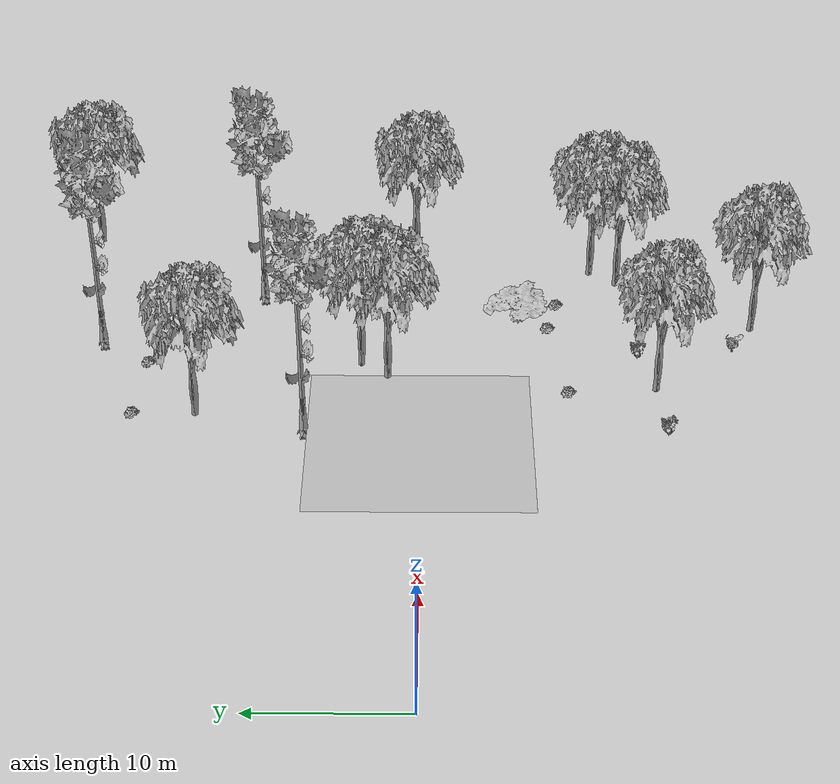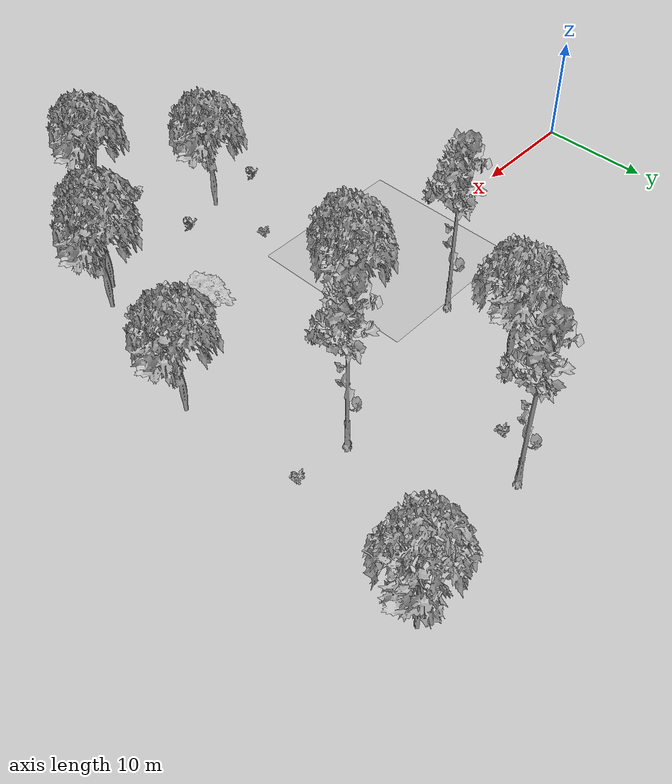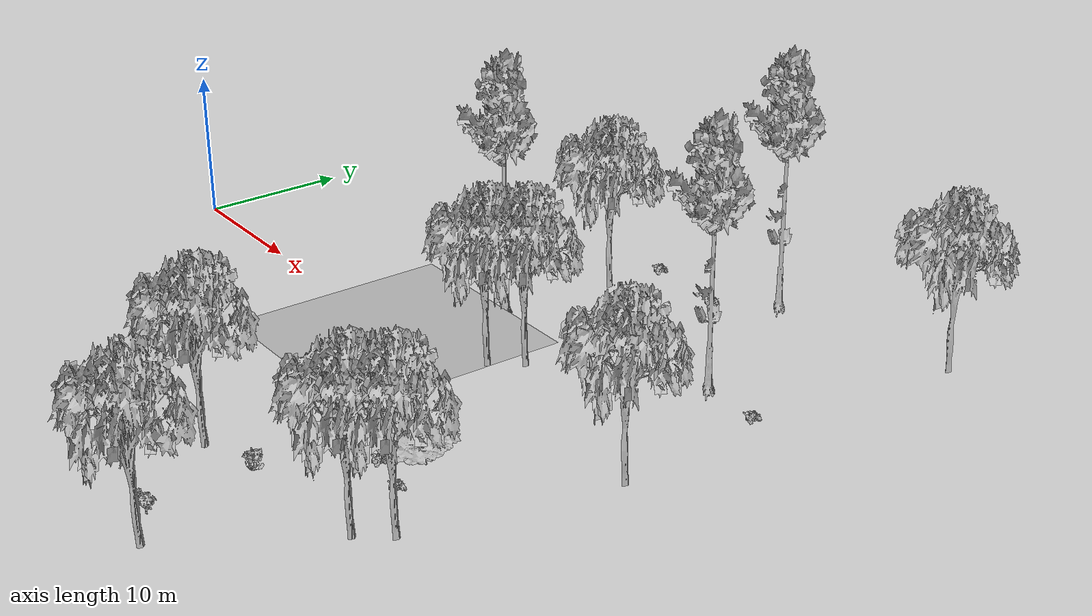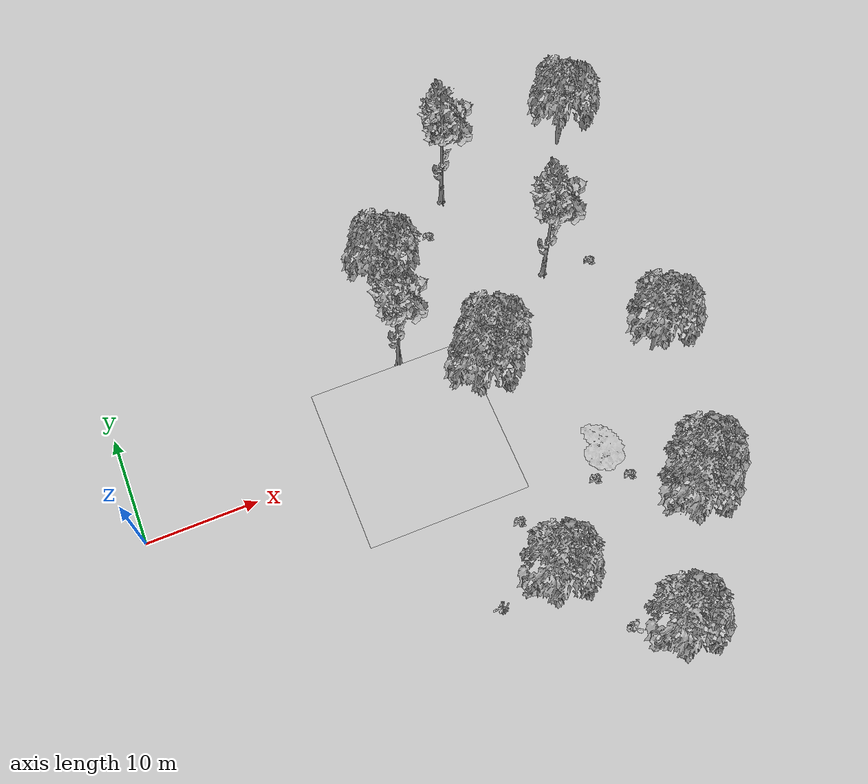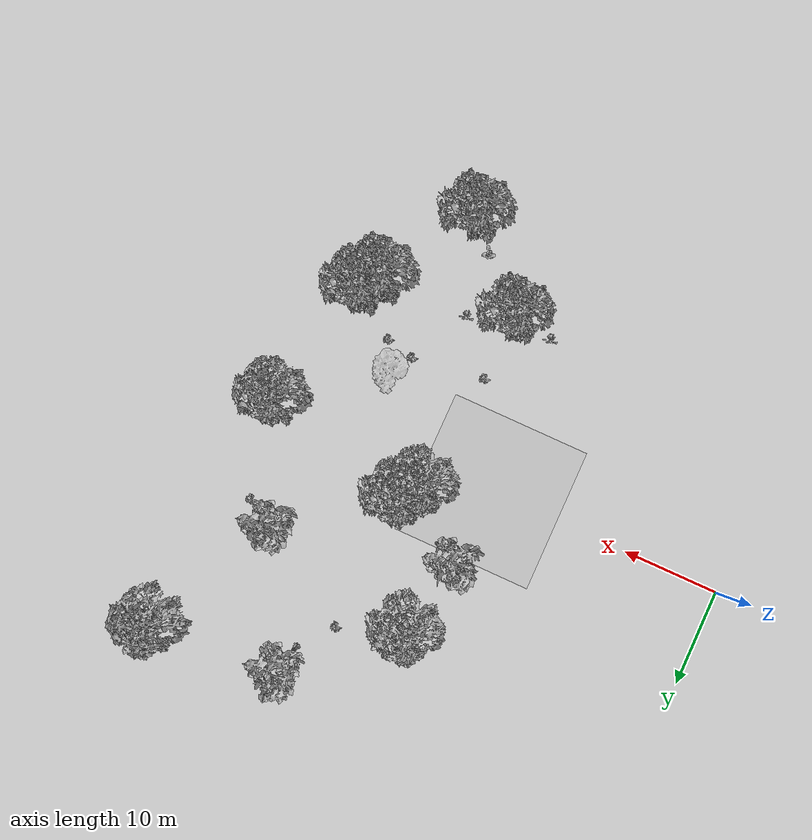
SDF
<sdf version="1.7">
 <world name="default">
  <model name="ground_plane">
   <static>1</static>
   <link name="link">
    <collision name="collision">
     <pose>25.0 0 0 0 -0 0</pose>
     <geometry><plane><normal>0 0 1</normal><size>50 50</size></plane></geometry>
     <surface><contact><ode><min_depth>0.01</min_depth><max_vel>0</max_vel></ode></contact></surface>
    </collision>
    <visual name="grass">
     <pose>25.0 0 0 0 -0 0</pose>
     <cast_shadows>0</cast_shadows>
     <geometry>
      <mesh>
       <scale>0.2731578947368421 0.2802702702702703 0.1</scale>
       <uri>file://grass_plane/meshes/grass_plane.dae</uri>
      </mesh>
     </geometry>
    </visual>
   </link>
  </model>
  <model name="Tree 1">
   <static>1</static>
   <pose>36.51618923853984 22.60068479904337 0 1.57079 -0 0</pose>
   <link name="link">
    <collision name="collision">
     <geometry><mesh><scale>3.5 5 3.5</scale><uri>model://tree_9/meshes/tree_9.obj</uri></mesh></geometry>
    </collision>
    <visual name="visual">
     <geometry><mesh><scale>3.5 5 3.5</scale><uri>model://tree_9/meshes/tree_9.obj</uri></mesh></geometry>
    </visual>
   </link>
  </model>
  <model name="Tree 3">
   <static>1</static>
   <pose>48.26618923853984 0.37846257682116047 0 1.57079 -0 0</pose>
   <link name="link">
    <collision name="collision">
     <geometry><mesh><scale>3.5 5 3.5</scale><uri>model://tree_2/meshes/tree_2.obj</uri></mesh></geometry>
    </collision>
    <visual name="visual">
     <geometry><mesh><scale>3.5 5 3.5</scale><uri>model://tree_2/meshes/tree_2.obj</uri></mesh></geometry>
    </visual>
   </link>
  </model>
  <model name="Tree 5">
   <static>1</static>
   <pose>30.641189238539837 -16.288204089845504 0 1.57079 -0 0</pose>
   <link name="link">
    <collision name="collision">
     <geometry><mesh><scale>3.5 5 3.5</scale><uri>model://tree_2/meshes/tree_2.obj</uri></mesh></geometry>
    </collision>
    <visual name="visual">
     <geometry><mesh><scale>3.5 5 3.5</scale><uri>model://tree_2/meshes/tree_2.obj</uri></mesh></geometry>
    </visual>
   </link>
  </model>
  <model name="Tree 7">
   <static>1</static>
   <pose>42.39118923853984 11.489573687932271 0 1.57079 -0 0</pose>
   <link name="link">
    <collision name="collision">
     <geometry><mesh><scale>3.5 5 3.5</scale><uri>model://tree_9/meshes/tree_9.obj</uri></mesh></geometry>
    </collision>
    <visual name="visual">
     <geometry><mesh><scale>3.5 5 3.5</scale><uri>model://tree_9/meshes/tree_9.obj</uri></mesh></geometry>
    </visual>
   </link>
  </model>
  <model name="Tree 9">
   <static>1</static>
   <pose>33.57868923853984 4.082166280524863 0 1.57079 -0 0</pose>
   <link name="link">
    <collision name="collision">
     <geometry><mesh><scale>3.5 5 3.5</scale><uri>model://tree_2/meshes/tree_2.obj</uri></mesh></geometry>
    </collision>
    <visual name="visual">
     <geometry><mesh><scale>3.5 5 3.5</scale><uri>model://tree_2/meshes/tree_2.obj</uri></mesh></geometry>
    </visual>
   </link>
  </model>
  <model name="Tree 11">
   <static>1</static>
   <pose>45.32868923853984 -12.5845003861418 0 1.57079 -0 0</pose>
   <link name="link">
    <collision name="collision">
     <geometry><mesh><scale>3.5 5 3.5</scale><uri>model://tree_2/meshes/tree_2.obj</uri></mesh></geometry>
    </collision>
    <visual name="visual">
     <geometry><mesh><scale>3.5 5 3.5</scale><uri>model://tree_2/meshes/tree_2.obj</uri></mesh></geometry>
    </visual>
   </link>
  </model>
  <model name="Tree 13">
   <static>1</static>
   <pose>27.703689238539837 15.193277391635966 0 1.57079 -0 0</pose>
   <link name="link">
    <collision name="collision">
     <geometry><mesh><scale>3.5 5 3.5</scale><uri>model://tree_2/meshes/tree_2.obj</uri></mesh></geometry>
    </collision>
    <visual name="visual">
     <geometry><mesh><scale>3.5 5 3.5</scale><uri>model://tree_2/meshes/tree_2.obj</uri></mesh></geometry>
    </visual>
   </link>
  </model>
  <model name="Tree 15">
   <static>1</static>
   <pose>39.45368923853984 -7.028944830586244 0 1.57079 -0 0</pose>
   <link name="link">
    <collision name="collision">
     <geometry><mesh><scale>4 2.5 4</scale><uri>model://tree_1/meshes/tree_1.obj</uri></mesh></geometry>
    </collision>
    <visual name="visual">
     <geometry><mesh><scale>4 2.5 4</scale><uri>model://tree_1/meshes/tree_1.obj</uri></mesh></geometry>
    </visual>
   </link>
  </model>
  <model name="Tree 17">
   <static>1</static>
   <pose>37.98493923853984 -23.69561149725291 0 1.57079 -0 0</pose>
   <link name="link">
    <collision name="collision">
     <geometry><mesh><scale>3.5 5 3.5</scale><uri>model://tree_2/meshes/tree_2.obj</uri></mesh></geometry>
    </collision>
    <visual name="visual">
     <geometry><mesh><scale>3.5 5 3.5</scale><uri>model://tree_2/meshes/tree_2.obj</uri></mesh></geometry>
    </visual>
   </link>
  </model>
  <model name="Tree 18">
   <static>1</static>
   <pose>26.234939238539837 7.785869984228569 0 1.57079 -0 0</pose>
   <link name="link">
    <collision name="collision">
     <geometry><mesh><scale>3.5 5 3.5</scale><uri>model://tree_9/meshes/tree_9.obj</uri></mesh></geometry>
    </collision>
    <visual name="visual">
     <geometry><mesh><scale>3.5 5 3.5</scale><uri>model://tree_9/meshes/tree_9.obj</uri></mesh></geometry>
    </visual>
   </link>
  </model>
  <model name="Tree 19">
   <static>1</static>
   <pose>49.73493923853984 24.452536650895226 0 1.57079 -0 0</pose>
   <link name="link">
    <collision name="collision">
     <geometry><mesh><scale>3.5 5 3.5</scale><uri>model://tree_2/meshes/tree_2.obj</uri></mesh></geometry>
    </collision>
    <visual name="visual">
     <geometry><mesh><scale>3.5 5 3.5</scale><uri>model://tree_2/meshes/tree_2.obj</uri></mesh></geometry>
    </visual>
   </link>
  </model>
  <model name="Tree 21">
   <static>1</static>
   <pose>32.10993923853984 2.230314428673008 0 1.57079 -0 0</pose>
   <link name="link">
    <collision name="collision">
     <geometry><mesh><scale>3.5 5 3.5</scale><uri>model://tree_2/meshes/tree_2.obj</uri></mesh></geometry>
    </collision>
    <visual name="visual">
     <geometry><mesh><scale>3.5 5 3.5</scale><uri>model://tree_2/meshes/tree_2.obj</uri></mesh></geometry>
    </visual>
   </link>
  </model>
  <model name="Tree 23">
   <static>1</static>
   <pose>43.85993923853984 -14.436352237993653 0 1.57079 -0 0</pose>
   <link name="link">
    <collision name="collision">
     <geometry><mesh><scale>3.5 5 3.5</scale><uri>model://tree_2/meshes/tree_2.obj</uri></mesh></geometry>
    </collision>
    <visual name="visual">
     <geometry><mesh><scale>3.5 5 3.5</scale><uri>model://tree_2/meshes/tree_2.obj</uri></mesh></geometry>
    </visual>
   </link>
  </model>
  <model name="Bush 0">
   <static>1</static>
   <pose>35.39076037320754 -22.039251478103992 0 1.57079 -0 0</pose>
   <link name="link">
    <collision name="collision">
     <geometry><mesh><scale>2 2 2</scale><uri>model://bush_0/meshes/bush_0.obj</uri></mesh></geometry>
     <surface><contact><collide_without_contact>false</collide_without_contact></contact></surface>
    </collision>
    <visual name="visual">
     <geometry><mesh><scale>2 2 2</scale><uri>model://bush_0/meshes/bush_0.obj</uri></mesh></geometry>
    </visual>
   </link>
  </model>
  <model name="Bush 1">
   <static>1</static>
   <pose>33.699853140486184 19.08185109374979 0 1.57079 -0 0</pose>
   <link name="link">
    <collision name="collision">
     <geometry><mesh><scale>2 2 2</scale><uri>model://bush_2/meshes/bush_2.obj</uri></mesh></geometry>
     <surface><contact><collide_without_contact>false</collide_without_contact></contact></surface>
    </collision>
    <visual name="visual">
     <geometry><mesh><scale>2 2 2</scale><uri>model://bush_2/meshes/bush_2.obj</uri></mesh></geometry>
    </visual>
   </link>
  </model>
  <model name="Bush 3">
   <static>1</static>
   <pose>38.055420558453704 -9.136974654698749 0 1.57079 -0 0</pose>
   <link name="link">
    <collision name="collision">
     <geometry><mesh><scale>2 2 2</scale><uri>model://bush_2/meshes/bush_2.obj</uri></mesh></geometry>
     <surface><contact><collide_without_contact>false</collide_without_contact></contact></surface>
    </collision>
    <visual name="visual">
     <geometry><mesh><scale>2 2 2</scale><uri>model://bush_2/meshes/bush_2.obj</uri></mesh></geometry>
    </visual>
   </link>
  </model>
  <model name="Bush 4">
   <static>1</static>
   <pose>27.816871812716553 19.526233248822138 0 1.57079 -0 0</pose>
   <link name="link">
    <collision name="collision">
     <geometry><mesh><scale>2 2 2</scale><uri>model://bush_2/meshes/bush_2.obj</uri></mesh></geometry>
     <surface><contact><collide_without_contact>false</collide_without_contact></contact></surface>
    </collision>
    <visual name="visual">
     <geometry><mesh><scale>2 2 2</scale><uri>model://bush_2/meshes/bush_2.obj</uri></mesh></geometry>
    </visual>
   </link>
  </model>
  <model name="Bush 5">
   <static>1</static>
   <pose>34.683296349944044 -15.33453758370767 0 1.57079 -0 0</pose>
   <link name="link">
    <collision name="collision">
     <geometry><mesh><scale>2 2 2</scale><uri>model://bush_4/meshes/bush_4.obj</uri></mesh></geometry>
     <surface><contact><collide_without_contact>false</collide_without_contact></contact></surface>
    </collision>
    <visual name="visual">
     <geometry><mesh><scale>2 2 2</scale><uri>model://bush_4/meshes/bush_4.obj</uri></mesh></geometry>
    </visual>
   </link>
  </model>
  <model name="Bush 7">
   <static>1</static>
   <pose>46.973478329833554 10.928321314557586 0 1.57079 -0 0</pose>
   <link name="link">
    <collision name="collision">
     <geometry><mesh><scale>2 2 2</scale><uri>model://bush_2/meshes/bush_2.obj</uri></mesh></geometry>
     <surface><contact><collide_without_contact>false</collide_without_contact></contact></surface>
    </collision>
    <visual name="visual">
     <geometry><mesh><scale>2 2 2</scale><uri>model://bush_2/meshes/bush_2.obj</uri></mesh></geometry>
    </visual>
   </link>
  </model>
  <model name="Bush 10">
   <static>1</static>
   <pose>30.328644464471946 -10.234980500719153 0 1.57079 -0 0</pose>
   <link name="link">
    <collision name="collision">
     <geometry><mesh><scale>2 2 2</scale><uri>model://bush_2/meshes/bush_2.obj</uri></mesh></geometry>
     <surface><contact><collide_without_contact>false</collide_without_contact></contact></surface>
    </collision>
    <visual name="visual">
     <geometry><mesh><scale>2 2 2</scale><uri>model://bush_2/meshes/bush_2.obj</uri></mesh></geometry>
    </visual>
   </link>
  </model>
  <model name="Bush 13">
   <static>1</static>
   <pose>41.05532368089549 -9.871915131326753 0 1.57079 -0 0</pose>
   <link name="link">
    <collision name="collision">
     <geometry><mesh><scale>2 2 2</scale><uri>model://bush_2/meshes/bush_2.obj</uri></mesh></geometry>
     <surface><contact><collide_without_contact>false</collide_without_contact></contact></surface>
    </collision>
    <visual name="visual">
     <geometry><mesh><scale>2 2 2</scale><uri>model://bush_2/meshes/bush_2.obj</uri></mesh></geometry>
    </visual>
   </link>
  </model>
  <model name="Bush 14">
   <static>1</static>
   <pose>25.84364842497211 -16.699963824601348 0 1.57079 -0 0</pose>
   <link name="link">
    <collision name="collision">
     <geometry><mesh><scale>2 2 2</scale><uri>model://bush_4/meshes/bush_4.obj</uri></mesh></geometry>
     <surface><contact><collide_without_contact>false</collide_without_contact></contact></surface>
    </collision>
    <visual name="visual">
     <geometry><mesh><scale>2 2 2</scale><uri>model://bush_4/meshes/bush_4.obj</uri></mesh></geometry>
    </visual>
   </link>
  </model>
 </world>
</sdf>
